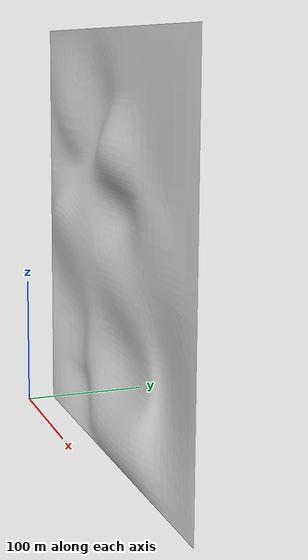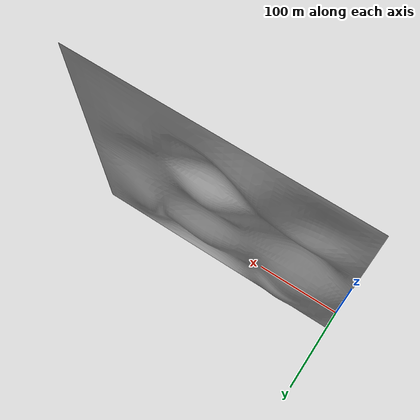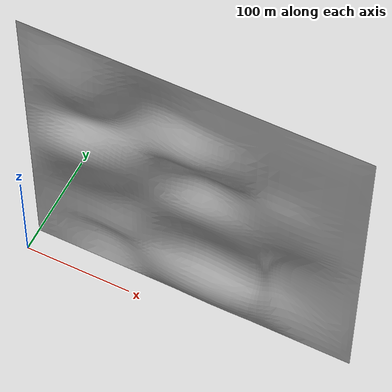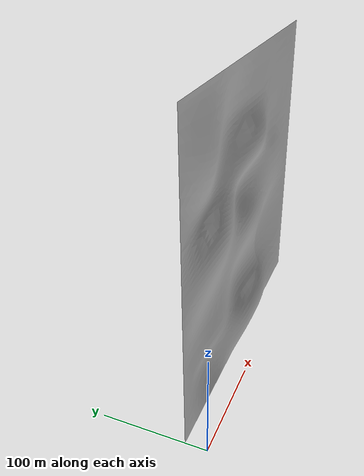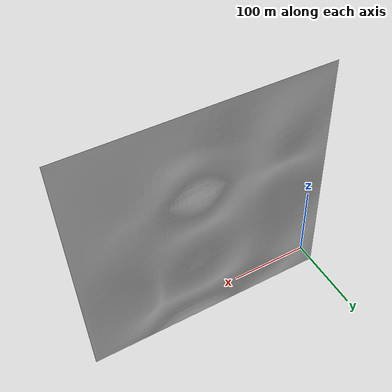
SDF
<?xml version="1.0" ?>
<sdf version="1.5">
  <model name="Terrain">
    <static>true</static>
    <link name="link">
      <collision name="collision">
        <geometry>
          <mesh>
            <uri>model://terrain/meshes/terrain.dae</uri>
            <scale>3 3 3</scale>
          </mesh>
        </geometry>
      </collision>
      <visual name="visual">
        <geometry>
          <mesh>
            <uri>model://terrain/meshes/terrain.dae</uri>
            <scale>3 3 3</scale>
          </mesh>
        </geometry>
      </visual>
    </link>
  </model>
</sdf>
